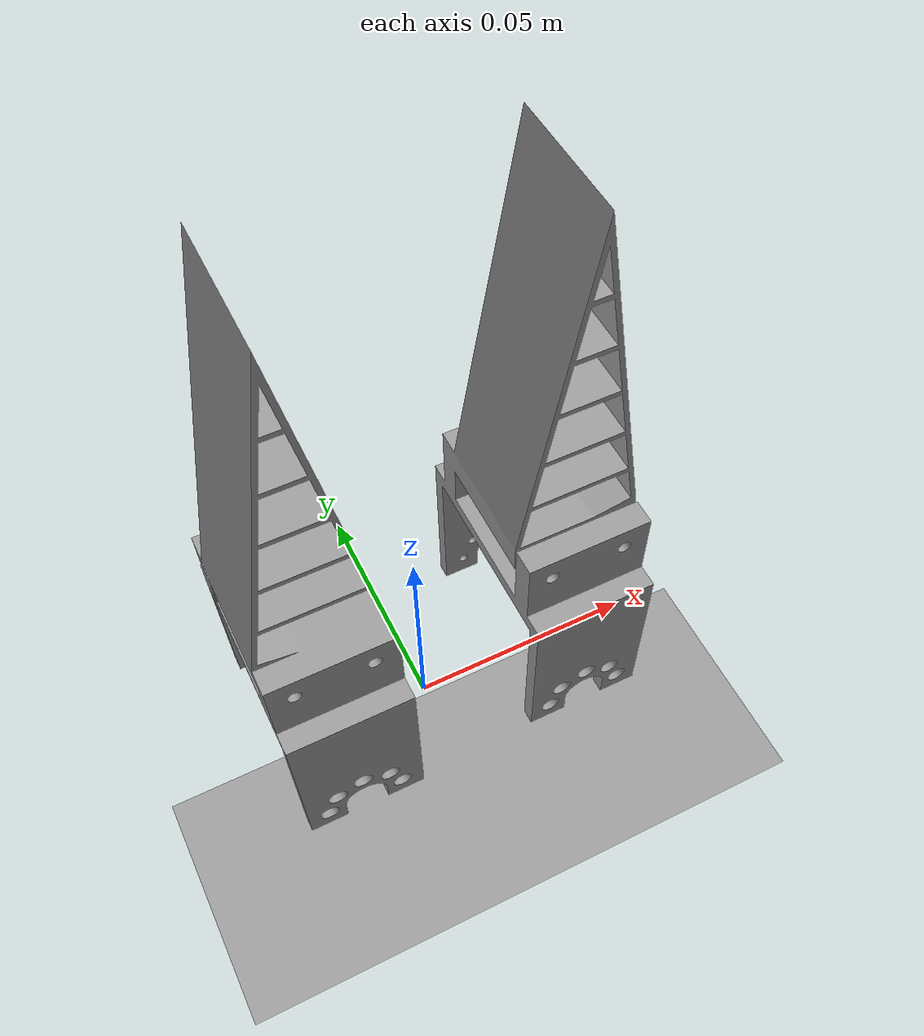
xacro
<?xml version="1.0"?>
<robot xmlns:xacro="http://www.ros.org/wiki/xacro">

    <link name="gripper_base_link">
    <visual>
        <geometry>
        <box size="0.123 0.05 0.00"/>
        </geometry>
        <origin xyz="0.0013 -0.026 -0.001"/>
        <material name="grey">
        <color rgba="0.6 0.6 0.6 1"/>
        </material>
    </visual>

    </link>

    <link name="finger_left">

    <visual>
        <geometry>
        <mesh filename="package://manip_description/meshes/garra.stl" scale="0.0001 0.0001 0.0001"/>
        </geometry>
        <origin xyz="0.024 0.2825 -0.301" rpy="0 3.14 -3.14"/>
        <material name="grey">
        <color rgba="0.6 0.6 0.6 1"/>
        </material>
    </visual>

    <collision>
        <geometry>
        <mesh filename="package://manip_description/meshes/garra.stl" scale="0.0001 0.0001 0.0001"/>
        </geometry>
        <origin xyz="0.024 0.283 -0.301" rpy="0 3.14 -3.14"/>
    </collision>

    <inertial>
        <mass value="0.05"/>
        <origin xyz="0.024 0.283 -0.301" rpy="0 3.14 -3.14"/>
        <inertia ixx="3e-05" ixy="0" ixz="0" iyy="3e-05" iyz="0" izz="8e-06"/>
    </inertial>

    </link>

    <joint name="manip_joint6" type="revolute">
    <parent link="gripper_base_link"/>
    <child link="finger_left"/>
    <origin xyz="-0.0227 0 0.013"/>
    <axis xyz="0 1 0"/>
    <limit lower="-1.0" upper="1.0" effort="1" velocity="5"/>
    </joint>

    <link name="finger_right">

    <visual>
        <geometry>
        <mesh filename="package://manip_description/meshes/garra.stl" scale="0.0001 0.0001 0.0001"/>
        </geometry>
        <origin xyz="-0.024 -0.283 -0.301" rpy="0 3.14 0"/>
        <material name="grey"/>
    </visual>

    <collision>
        <geometry>
        <mesh filename="package://manip_description/meshes/garra.stl" scale="0.0001 0.0001 0.0001"/>
        </geometry>
        <origin xyz="-0.024 -0.283 -0.301" rpy="0 3.14 0"/>
    </collision>

    <inertial>
        <mass value="0.05"/>
        <origin xyz="-0.024 -0.283 -0.301" rpy="0 3.14 0"/>
        <inertia ixx="3e-05" ixy="0" ixz="0" iyy="3e-05" iyz="0" izz="8e-06"/>
    </inertial>

    </link>

    <joint name="manip_joint7" type="revolute">
    <parent link="gripper_base_link"/>
    <child link="finger_right"/>
    <origin xyz="0.027 0 0.013"/>
    <axis xyz="0 -1 0"/>
    <limit lower="-1.0" upper="1.0" effort="1" velocity="5"/>
    </joint>

</robot>
